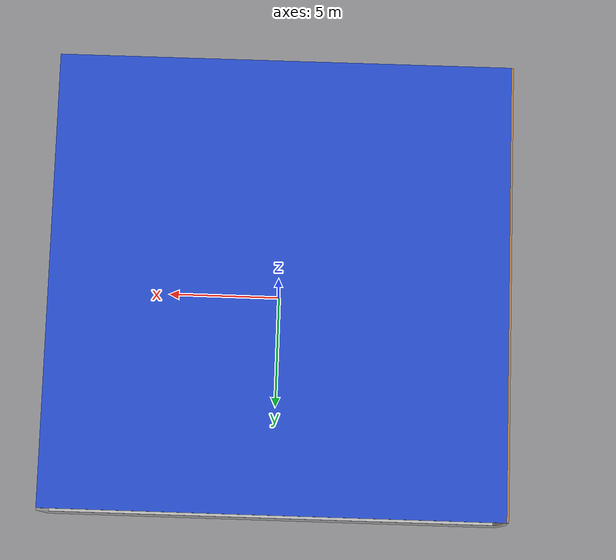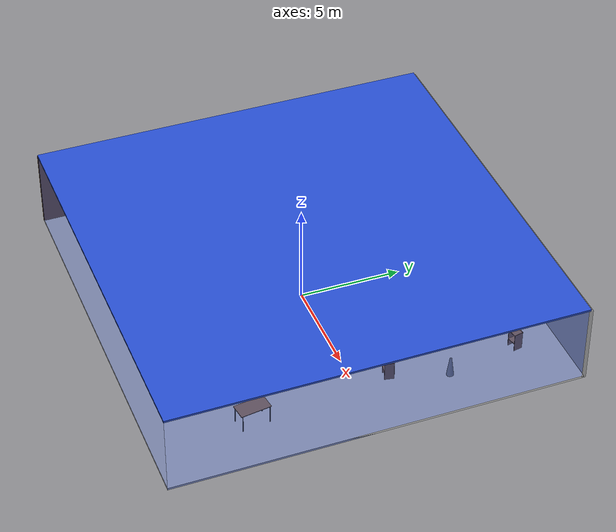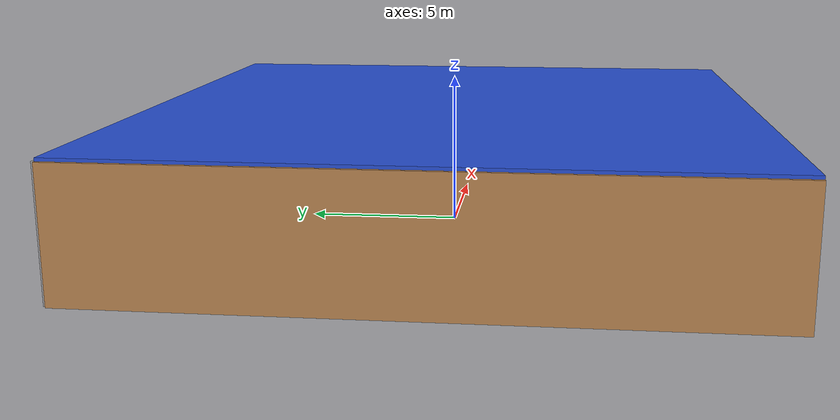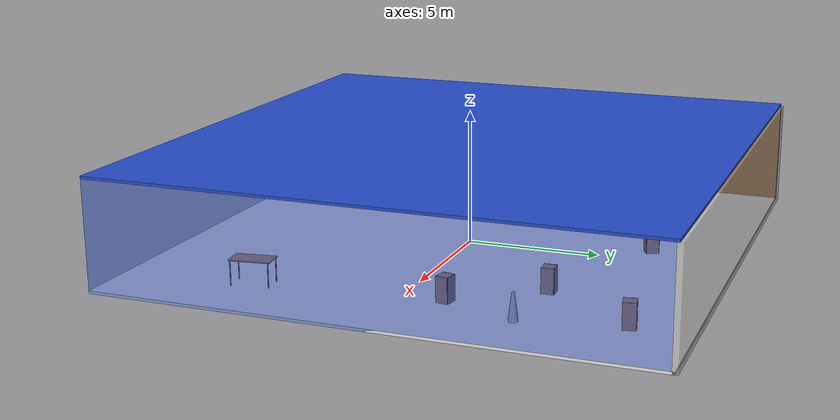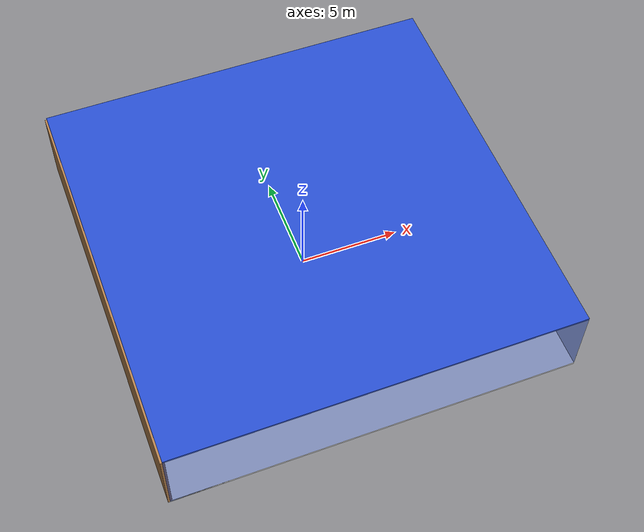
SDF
<sdf version="1.4">
 <world name="default">
  <physics type="ode">
   <max_step_size>0.001</max_step_size>
   <real_time_factor>1</real_time_factor>
   <real_time_update_rate>1000</real_time_update_rate>
   <gravity>0 0 -9.8</gravity>
  </physics>
  <scene><ambient>0.4 0.4 0.4 1</ambient><background>0.7 0.7 0.7 1</background><shadows>1</shadows></scene>
  <model name="Surrounding">
   <static>1</static>
   <link name="Ceiling">
    <collision name="Ceiling_Collision"><geometry><box><size>20 20 0.1</size></box></geometry></collision>
    <visual name="Ceiling_Visual">
     <geometry><box><size>20 20 0.1</size></box></geometry>
     <material>
      <script><uri>file://media/materials/scripts/gazebo.material</uri><name>Gazebo/Blue</name></script>
     </material>
    </visual>
    <pose>0 0 4.05 0 0 0</pose>
   </link>
   <link name="Wall_South">
    <collision name="Wall_South_Collision">
     <geometry><box><size>20 0 4</size></box></geometry>
     <pose>0 0 2 0 -0 0</pose>
    </collision>
    <visual name="Wall_South_Visual">
     <pose>0 0 2 0 -0 0</pose>
     <geometry><box><size>20 0 4</size></box></geometry>
     <material>
      <script><uri>file://media/materials/scripts/gazebo.material</uri><name>Gazebo/BlueTransparent</name></script>
     </material>
    </visual>
    <velocity_decay><linear>0</linear><angular>0</angular></velocity_decay>
    <pose>0 -10 0 0 -0 0</pose>
   </link>
   <link name="Wall_East">
    <collision name="Wall_21_Collision">
     <geometry><box><size>20 0 4</size></box></geometry>
     <pose>0 0 2 0 -0 0</pose>
    </collision>
    <visual name="Wall_21_Visual">
     <pose>0 0 2 0 -0 0</pose>
     <geometry><box><size>20 0 4</size></box></geometry>
     <material>
      <script><uri>file://media/materials/scripts/gazebo.material</uri><name>Gazebo/BlueTransparent</name></script>
     </material>
    </visual>
    <velocity_decay><linear>0</linear><angular>0</angular></velocity_decay>
    <pose>10 0 0 0 -0 1.5708</pose>
   </link>
   <link name="Wall_North">
    <collision name="Wall_22_Collision">
     <geometry><box><size>20 0.2 4</size></box></geometry>
     <pose>0 0 2 0 -0 0</pose>
    </collision>
    <visual name="Wall_22_Visual">
     <pose>0 0 2 0 -0 0</pose>
     <geometry><box><size>20 0.2 4</size></box></geometry>
     <material>
      <script><uri>file://media/materials/scripts/gazebo.material</uri><name>Gazebo/GreyTransparent</name></script>
     </material>
    </visual>
    <velocity_decay><linear>0</linear><angular>0</angular></velocity_decay>
    <pose>0 10 0 0 -0 0</pose>
   </link>
   <link name="Wall_West">
    <collision name="Wall_23_Collision">
     <geometry><box><size>20 0.2 4</size></box></geometry>
     <pose>0 0 2 0 -0 0</pose>
    </collision>
    <visual name="Wall_23_Visual">
     <pose>0 0 2 0 -0 0</pose>
     <geometry><box><size>20 0.2 4</size></box></geometry>
     <material>
      <script><uri>file://media/materials/scripts/gazebo.material</uri><name>Gazebo/Wood</name></script>
     </material>
    </visual>
    <velocity_decay><linear>0</linear><angular>0</angular></velocity_decay>
    <pose>-10 0 0 0 0 -1.5708</pose>
   </link>
   <link name="Ground_link">
    <collision name="collision">
     <pose>0 0 .05 0 -0 0</pose>
     <geometry><box><size>20 20 0.1</size></box></geometry>
    </collision>
    <visual name="visual">
     <pose>0 0 .05 0 -0 0</pose>
     <geometry><box><size>20 20 0.1</size></box></geometry>
     <material>
      <script><uri>file://media/materials/scripts/gazebo.material</uri><name>Gazebo/WhiteGlow</name></script>
     </material>
    </visual>
   </link>
   <static>1</static>
  </model>
  <spherical_coordinates>
   <surface_model>EARTH_WGS84</surface_model>
   <latitude_deg>0</latitude_deg>
   <longitude_deg>0</longitude_deg>
   <elevation>0</elevation>
   <heading_deg>0</heading_deg>
  </spherical_coordinates>
  <light name="lightball_0" type="diffuse">
   <diffuse>0.8 0.8 0.8 1</diffuse>
   <specular>0.2 0.2 0.2 1</specular>
   <attenuation>
    <range>100</range>
    <constant>0.7</constant>
    <linear>0.01</linear>
    <quadratic>0.001</quadratic>
   </attenuation>
   <direction>-0.5 0.1 -0.9</direction>
   <pose>3.04979771097 5.54428339634 3.54430766322 0 0 0</pose>
  </light>
  <light name="lightball_1" type="diffuse">
   <diffuse>0.8 0.8 0.8 1</diffuse>
   <specular>0.2 0.2 0.2 1</specular>
   <attenuation>
    <range>100</range>
    <constant>0.7</constant>
    <linear>0.01</linear>
    <quadratic>0.001</quadratic>
   </attenuation>
   <direction>-0.5 0.1 -0.9</direction>
   <pose>-9.50622274417 5.3370250025 0.559827636371 0 0 0</pose>
  </light>
  <light name="lightball_2" type="diffuse">
   <diffuse>0.8 0.8 0.8 1</diffuse>
   <specular>0.2 0.2 0.2 1</specular>
   <attenuation>
    <range>100</range>
    <constant>0.7</constant>
    <linear>0.01</linear>
    <quadratic>0.001</quadratic>
   </attenuation>
   <direction>-0.5 0.1 -0.9</direction>
   <pose>-5.3578996186 -9.71686567439 2.44070769713 0 0 0</pose>
  </light>
  <light name="lightball_3" type="diffuse">
   <diffuse>0.8 0.8 0.8 1</diffuse>
   <specular>0.2 0.2 0.2 1</specular>
   <attenuation>
    <range>100</range>
    <constant>0.7</constant>
    <linear>0.01</linear>
    <quadratic>0.001</quadratic>
   </attenuation>
   <direction>-0.5 0.1 -0.9</direction>
   <pose>-2.78655355459 -0.0323229713099 1.01481064112 0 0 0</pose>
  </light>
  <light name="lightball_4" type="diffuse">
   <diffuse>0.8 0.8 0.8 1</diffuse>
   <specular>0.2 0.2 0.2 1</specular>
   <attenuation>
    <range>100</range>
    <constant>0.7</constant>
    <linear>0.01</linear>
    <quadratic>0.001</quadratic>
   </attenuation>
   <direction>-0.5 0.1 -0.9</direction>
   <pose>9.7242868756 -5.98993537204 1.35725163293 0 0 0</pose>
  </light>
  <light name="lightball_5" type="diffuse">
   <diffuse>0.8 0.8 0.8 1</diffuse>
   <specular>0.2 0.2 0.2 1</specular>
   <attenuation>
    <range>100</range>
    <constant>0.7</constant>
    <linear>0.01</linear>
    <quadratic>0.001</quadratic>
   </attenuation>
   <direction>-0.5 0.1 -0.9</direction>
   <pose>-5.68752232383 7.15453460738 2.11851634726 0 0 0</pose>
  </light>
  <light name="lightball_6" type="diffuse">
   <diffuse>0.8 0.8 0.8 1</diffuse>
   <specular>0.2 0.2 0.2 1</specular>
   <attenuation>
    <range>100</range>
    <constant>0.7</constant>
    <linear>0.01</linear>
    <quadratic>0.001</quadratic>
   </attenuation>
   <direction>-0.5 0.1 -0.9</direction>
   <pose>-0.663551483991 -6.571975336 2.92753904065 0 0 0</pose>
  </light>
  <light name="lightball_7" type="diffuse">
   <diffuse>0.8 0.8 0.8 1</diffuse>
   <specular>0.2 0.2 0.2 1</specular>
   <attenuation>
    <range>100</range>
    <constant>0.7</constant>
    <linear>0.01</linear>
    <quadratic>0.001</quadratic>
   </attenuation>
   <direction>-0.5 0.1 -0.9</direction>
   <pose>-1.89871636191 -6.63752723437 1.89737135957 0 0 0</pose>
  </light>
  <light name="lightball_8" type="diffuse">
   <diffuse>0.8 0.8 0.8 1</diffuse>
   <specular>0.2 0.2 0.2 1</specular>
   <attenuation>
    <range>100</range>
    <constant>0.7</constant>
    <linear>0.01</linear>
    <quadratic>0.001</quadratic>
   </attenuation>
   <direction>-0.5 0.1 -0.9</direction>
   <pose>2.1763978271 4.47472000989 2.84256697597 0 0 0</pose>
  </light>
  <include><uri>model://cabinet</uri><pose>-4.89552564628 5.16536607798 0 0 0 3.08796656412</pose></include>
  <include><uri>model://cabinet</uri><pose>-0.821806511538 6.79285576361 0 0 0 0.430853635808</pose></include>
  <include><uri>model://cabinet</uri><pose>4.7319088277 4.5692869785 0 0 0 1.61154196901</pose></include>
  <include><uri>model://table</uri><pose>7.39984457351 -5.15758984869 0 0 0 1.70806913495</pose></include>
  <include><uri>model://cabinet</uri><pose>6.78332055121 1.64119282525 0 0 0 1.37564140626</pose></include>
  <include>
   <uri>model://construction_cone</uri>
   <pose>7.72508629579 4.31533006747 0 0 0 2.75465905436</pose>
  </include>
  <include><uri>model://cabinet</uri><pose>7.04222158023 7.91067694109 0 0 0 1.77191527909</pose></include>
 </world>
</sdf>

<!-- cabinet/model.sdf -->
<sdf version="1.5">
  <model name="cabinet">
    <static>true</static>
    <link name="cabinet_bottom_plate">
      <inertial>
        <pose>0 0 -1 0 0 0</pose>
        <inertia>
          <ixx>2.050000</ixx>
          <ixy>0</ixy>
          <ixz>0</ixz>
          <iyy>2.050000</iyy>
          <iyz>0</iyz>
          <izz>2.050000</izz>
        </inertia>
        <mass>25.000000</mass>
      </inertial>
      <collision name="cabinet_bottom_plate_geom">
        <pose>0 0 0.010000 0 0 0</pose>
        <geometry>
          <box>
            <size>0.450000 0.450000 0.020000</size>
          </box>
        </geometry>
      </collision>
      <visual name="cabinet_bottom_plate_geom_visual">
        <pose>0 0 0.010000 0 0 0</pose>
        <geometry>
          <box>
            <size>0.450000 0.450000 0.020000</size>
          </box>
        </geometry>
        <material>
          <script>
            <uri>model://media/materials/scripts/gazebo.material</uri>
            <name>Gazebo/Wood</name>
          </script>
        </material>
      </visual>
      <collision name="cabinet_bottom_plate_geom_cabinet_back_plate">
        <pose>0.235000 0 0.510000 0 0 0</pose>
        <geometry>
          <box>
            <size>0.020000 0.450000 1.020000</size>
          </box>
        </geometry>
      </collision>
      <visual name="cabinet_bottom_plate_geom_cabinet_back_plate_visual">
        <pose>0.235000 0 0.510000 0 0 0</pose>
        <geometry>
          <box>
            <size>0.020000 0.450000 1.020000</size>
          </box>
        </geometry>
        <material>
          <script>
            <uri>model://media/materials/scripts/gazebo.material</uri>
            <name>Gazebo/Wood</name>
          </script>
        </material>
      </visual>
      <collision name="cabinet_bottom_plate_geom_cabinet_left_plate">
        <pose>0 0.235000 0.510000 0 0 0</pose>
        <geometry>
          <box>
            <size>0.450000 0.020000 1.020000</size>
          </box>
        </geometry>
      </collision>
      <visual name="cabinet_bottom_plate_geom_cabinet_left_plate_visual">
        <pose>0 0.235000 0.510000 0 0 0</pose>
        <geometry>
          <box>
            <size>0.450000 0.020000 1.020000</size>
          </box>
        </geometry>
        <material>
          <script>
            <uri>model://media/materials/scripts/gazebo.material</uri>
            <name>Gazebo/Wood</name>
          </script>
        </material>
      </visual>
      <collision name="cabinet_bottom_plate_geom_cabinet_middle_plate">
        <pose>0 0 0.510000 0 0 0</pose>
        <geometry>
          <box>
            <size>0.450000 0.450000 0.020000</size>
          </box>
        </geometry>
      </collision>
      <visual name="cabinet_bottom_plate_geom_cabinet_middle_plate_visual">
        <pose>0 0 0.510000 0 0 0</pose>
        <geometry>
          <box>
            <size>0.450000 0.450000 0.020000</size>
          </box>
        </geometry>
        <material>
          <script>
            <uri>model://media/materials/scripts/gazebo.material</uri>
            <name>Gazebo/Wood</name>
          </script>
        </material>
      </visual>
      <collision name="cabinet_bottom_plate_geom_cabinet_right_plate">
        <pose>0 -0.235000 0.510000 0 0 0</pose>
        <geometry>
          <box>
            <size>0.450000 0.020000 1.020000</size>
          </box>
        </geometry>
      </collision>
      <visual name="cabinet_bottom_plate_geom_cabinet_right_plate_visual">
        <pose>0 -0.235000 0.510000 0 0 0</pose>
        <geometry>
          <box>
            <size>0.450000 0.020000 1.020000</size>
          </box>
        </geometry>
        <material>
          <script>
            <uri>model://media/materials/scripts/gazebo.material</uri>
            <name>Gazebo/Wood</name>
          </script>
        </material>
      </visual>
      <collision name="cabinet_bottom_plate_geom_cabinet_top_plate">
        <pose>0 0 1.010000 0 0 0</pose>
        <geometry>
          <box>
            <size>0.450000 0.450000 0.020000</size>
          </box>
        </geometry>
      </collision>
      <visual name="cabinet_bottom_plate_geom_cabinet_top_plate_visual">
        <pose>0 0 1.010000 0 0 0</pose>
        <geometry>
          <box>
            <size>0.450000 0.450000 0.020000</size>
          </box>
        </geometry>
        <material>
          <script>
            <uri>model://media/materials/scripts/gazebo.material</uri>
            <name>Gazebo/Wood</name>
          </script>
        </material>
      </visual>
    </link>
  </model>
</sdf>

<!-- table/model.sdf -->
<sdf version="1.5">
  <model name="table">
    <static>true</static>
    <link name="link">
      <collision name="surface">
        <pose>0 0 1.0 0 0 0</pose>
        <geometry>
          <box>
            <size>1.5 0.8 0.03</size>
          </box>
        </geometry>
        <surface>
          <friction>
            <ode>
              <mu>0.6</mu>
              <mu2>0.6</mu2>
            </ode>
          </friction>
        </surface>
      </collision>
      <visual name="visual1">
        <pose>0 0 1.0 0 0 0</pose>
        <geometry>
          <box>
            <size>1.5 0.8 0.03</size>
          </box>
        </geometry>
        <material>
          <script>
            <uri>model://media/materials/scripts/gazebo.material</uri>
            <name>Gazebo/Wood</name>
          </script>
        </material>
      </visual>
      <collision name="front_left_leg">
        <pose>0.68 0.38 0.5 0 0 0</pose>
        <geometry>
          <cylinder>
            <radius>0.02</radius>
            <length>1.0</length>
          </cylinder>
        </geometry>
      </collision>
      <visual name="front_left_leg">
        <pose>0.68 0.38 0.5 0 0 0</pose>
        <geometry>
          <cylinder>
            <radius>0.02</radius>
            <length>1.0</length>
          </cylinder>
        </geometry>
        <material>
          <script>
            <uri>model://media/materials/scripts/gazebo.material</uri>
            <name>Gazebo/Grey</name>
          </script>
        </material>
      </visual>
      <collision name="front_right_leg">
        <pose>0.68 -0.38 0.5 0 0 0</pose>
        <geometry>
          <cylinder>
            <radius>0.02</radius>
            <length>1.0</length>
          </cylinder>
        </geometry>
      </collision>
      <visual name="front_right_leg">
        <pose>0.68 -0.38 0.5 0 0 0</pose>
        <geometry>
          <cylinder>
            <radius>0.02</radius>
            <length>1.0</length>
          </cylinder>
        </geometry>
        <material>
          <script>
            <uri>model://media/materials/scripts/gazebo.material</uri>
            <name>Gazebo/Grey</name>
          </script>
        </material>
      </visual>
      <collision name="back_right_leg">
        <pose>-0.68 -0.38 0.5 0 0 0</pose>
        <geometry>
          <cylinder>
            <radius>0.02</radius>
            <length>1.0</length>
          </cylinder>
        </geometry>
      </collision>
      <visual name="back_right_leg">
        <pose>-0.68 -0.38 0.5 0 0 0</pose>
        <geometry>
          <cylinder>
            <radius>0.02</radius>
            <length>1.0</length>
          </cylinder>
        </geometry>
        <material>
          <script>
            <uri>model://media/materials/scripts/gazebo.material</uri>
            <name>Gazebo/Grey</name>
          </script>
        </material>
      </visual>
      <collision name="back_left_leg">
        <pose>-0.68 0.38 0.5 0 0 0</pose>
        <geometry>
          <cylinder>
            <radius>0.02</radius>
            <length>1.0</length>
          </cylinder>
        </geometry>
      </collision>
      <visual name="back_left_leg">
        <pose>-0.68 0.38 0.5 0 0 0</pose>
        <geometry>
          <cylinder>
            <radius>0.02</radius>
            <length>1.0</length>
          </cylinder>
        </geometry>
        <material>
          <script>
            <uri>model://media/materials/scripts/gazebo.material</uri>
            <name>Gazebo/Grey</name>
          </script>
        </material>
      </visual>
    </link>
  </model>
</sdf>

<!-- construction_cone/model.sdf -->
<sdf version="1.5">
  <model name="Construction Cone">
    <link name="link">
      <collision name="collision">
        <geometry>
          <mesh>
            <scale>10 10 10</scale>
            <uri>file://isr-testbed/construction_cone/meshes/construction_cone.dae</uri>
          </mesh>
        </geometry>
      </collision>
      <visual name="visual">
        <geometry>
          <mesh>
            <scale>10 10 10</scale>
            <uri>file://isr-testbed/construction_cone/meshes/construction_cone.dae</uri>
          </mesh>
        </geometry>
      </visual>
    </link>
  </model>
</sdf>
